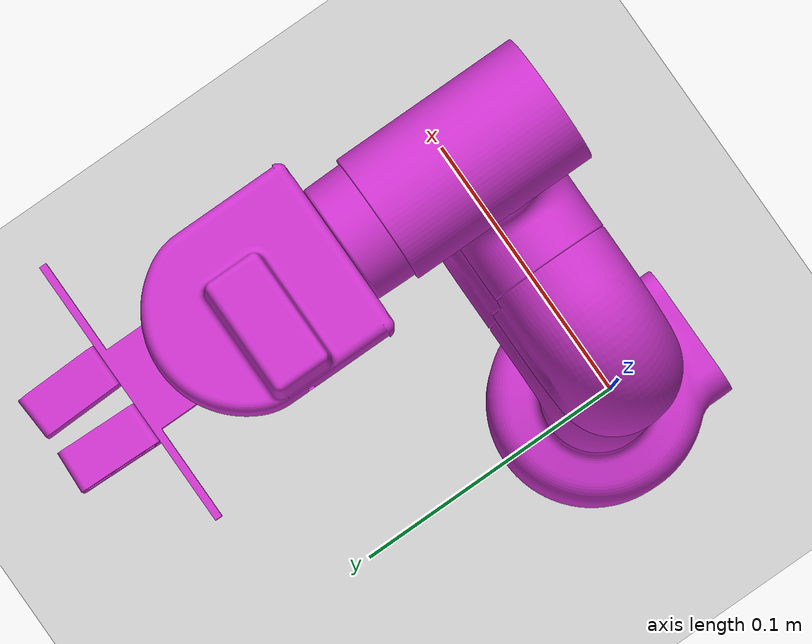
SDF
<sdf version="1.9">
 <world name="car_world">
  <physics name="1ms" type="ignored">
   <max_step_size>0.001</max_step_size>
   <real_time_factor>1</real_time_factor>
   <real_time_update_rate>1000</real_time_update_rate>
  </physics>
  <plugin name="ignition::gazebo::systems::Physics" filename="libignition-gazebo-physics-system.so"/>
  <plugin name="ignition::gazebo::systems::UserCommands" filename="libignition-gazebo-user-commands-system.so"/>
  <plugin name="ignition::gazebo::systems::SceneBroadcaster" filename="libignition-gazebo-scene-broadcaster-system.so"/>
  <gravity>0 0 -9.8</gravity>
  <magnetic_field>6e-06 2.3e-05 -4.2e-05</magnetic_field>
  <atmosphere type="adiabatic"/>
  <scene><ambient>0.4 0.4 0.4 1</ambient><background>0.7 0.7 0.7 1</background><shadows>true</shadows></scene>
  <model name="ground_plane">
   <static>true</static>
   <link name="link">
    <collision name="collision">
     <geometry><plane><normal>0 0 1</normal><size>1 1</size></plane></geometry>
    </collision>
    <visual name="visual">
     <geometry><plane><normal>0 0 1</normal><size>100 100</size></plane></geometry>
     <material>
      <ambient>0.8 0.8 0.8 1</ambient>
      <diffuse>0.8 0.8 0.8 1</diffuse>
      <specular>0.8 0.8 0.8 1</specular>
     </material>
    </visual>
    <inertial>
     <mass>1</mass>
     <inertia><ixx>1</ixx><ixy>0</ixy><ixz>0</ixz><iyy>1</iyy><iyz>0</iyz><izz>1</izz></inertia>
    </inertial>
   </link>
  </model>
  <model name="joints">
   <plugin filename="libignition-gazebo-joint-state-publisher-system.so" name="ignition::gazebo::systems::JointStatePublisher"/>
   <plugin filename="gz-sim-joint-position-controller-system" name="ignition::gazebo::systems::JointPositionController">
    <joint_name>base_link_j1</joint_name>
   </plugin>
   <plugin filename="gz-sim-joint-position-controller-system" name="ignition::gazebo::systems::JointPositionController">
    <joint_name>shoulder_j2</joint_name>
   </plugin>
   <plugin filename="gz-sim-joint-position-controller-system" name="ignition::gazebo::systems::JointPositionController">
    <joint_name>elbow1_j3</joint_name>
   </plugin>
   <plugin filename="gz-sim-joint-position-controller-system" name="ignition::gazebo::systems::JointPositionController">
    <joint_name>elbow2_j4</joint_name>
   </plugin>
   <plugin filename="gz-sim-joint-position-controller-system" name="ignition::gazebo::systems::JointPositionController">
    <joint_name>wrist_j5</joint_name>
   </plugin>
   <plugin filename="gz-sim-joint-position-controller-system" name="ignition::gazebo::systems::JointPositionController">
    <joint_name>endeff_j6</joint_name>
   </plugin>
   <link name="shoulder">
    <pose>0 0.032123 0.051938 1.5708 -0 0</pose>
    <inertial>
     <mass>0.89223600000000003</mass>
     <pose>0.006107 0.06982 0.02453 0 -0 0</pose>
     <inertia>
      <ixx>0.00063692900000000005</ixx>
      <iyy>0.00024207800000000001</iyy>
      <izz>0.000714013</izz>
      <ixy>-0.00014307799999999999</ixy>
      <iyz>-1.82782e-13</iyz>
      <ixz>2.1864799999999999e-13</ixz>
     </inertia>
    </inertial>
    <visual name="shoulder_visual">
     <geometry><mesh><uri>file://meshes/shoulder.stl</uri><scale>0.001 0.001 0.001</scale></mesh></geometry>
     <material>
      <ambient>0.8 0.2 0.8 1</ambient>
      <diffuse>0.8 0.2 0.8 1</diffuse>
      <specular>0.5 0.5 0.2 1</specular>
     </material>
    </visual>
    <collision name="shoulder_collision">
     <geometry><mesh><uri>file://meshes/shoulder.stl</uri><scale>0.001 0.001 0.001</scale></mesh></geometry>
    </collision>
   </link>
   <link name="elbow1">
    <pose>0.1 0.032161 0.331933 1.57101 -0 -3.14159</pose>
    <inertial>
     <mass>1.3454699999999999</mass>
     <pose>0.035943 -0.13605 -0.02453 0 -0 0</pose>
     <inertia>
      <ixx>0.0020138700000000001</ixx>
      <iyy>0.00038056400000000001</iyy>
      <izz>0.0021456600000000002</izz>
      <ixy>-1.9530399999999999e-12</ixy>
      <iyz>-3.38013e-16</iyz>
      <ixz>5.2711999999999998e-13</ixz>
     </inertia>
    </inertial>
    <visual name="elbow1_visual">
     <geometry><mesh><uri>file://meshes/elbow1.stl</uri><scale>0.001 0.001 0.001</scale></mesh></geometry>
     <material>
      <ambient>0.8 0.2 0.8 1</ambient>
      <diffuse>0.8 0.2 0.8 1</diffuse>
      <specular>0.5 0.5 0.2 1</specular>
     </material>
    </visual>
    <collision name="elbow1_collision">
     <geometry><mesh><uri>file://meshes/elbow1.stl</uri><scale>0.001 0.001 0.001</scale></mesh></geometry>
    </collision>
   </link>
   <link name="elbow2">
    <pose>0.05 0.031977 0.531952 1.57138 -0 0</pose>
    <inertial>
     <mass>1.3454699999999999</mass>
     <pose>-0.041927 -0.239877 0.02453 0 -0 0</pose>
     <inertia>
      <ixx>0.0020138700000000001</ixx>
      <iyy>0.00038056400000000001</iyy>
      <izz>0.0021456600000000002</izz>
      <ixy>-1.9530399999999999e-12</ixy>
      <iyz>-3.3831300000000002e-16</iyz>
      <ixz>5.2711999999999998e-13</ixz>
     </inertia>
    </inertial>
    <visual name="elbow2_visual">
     <geometry><mesh><uri>file://meshes/elbow2.stl</uri><scale>0.001 0.001 0.001</scale></mesh></geometry>
     <material>
      <ambient>0.8 0.2 0.8 1</ambient>
      <diffuse>0.8 0.2 0.8 1</diffuse>
      <specular>0.5 0.5 0.2 1</specular>
     </material>
    </visual>
    <collision name="elbow2_collision">
     <geometry><mesh><uri>file://meshes/elbow2.stl</uri><scale>0.001 0.001 0.001</scale></mesh></geometry>
    </collision>
   </link>
   <link name="wrist">
    <pose>0.09 0.032542 0.706907 -1.56956 -0 3.14159</pose>
    <inertial>
     <mass>0.56212899999999999</mass>
     <pose>0.027531 0.357129 0.02453 0 -0 0</pose>
     <inertia>
      <ixx>0.00016124100000000001</ixx>
      <iyy>0.00016124100000000001</iyy>
      <izz>0.00021861800000000001</izz>
      <ixy>-5.36332e-05</ixy>
      <iyz>-1.5165100000000001e-13</iyz>
      <ixz>1.5166800000000001e-13</ixz>
     </inertia>
    </inertial>
    <visual name="wrist_visual">
     <geometry><mesh><uri>file://meshes/wrist.stl</uri><scale>0.001 0.001 0.001</scale></mesh></geometry>
     <material>
      <ambient>0.8 0.2 0.8 1</ambient>
      <diffuse>0.8 0.2 0.8 1</diffuse>
      <specular>0.5 0.5 0.2 1</specular>
     </material>
    </visual>
    <collision name="wrist_collision">
     <geometry><mesh><uri>file://meshes/wrist.stl</uri><scale>0.001 0.001 0.001</scale></mesh></geometry>
    </collision>
   </link>
   <link name="endeff">
    <pose>0.149954 0.132664 0.781783 3.14035 0 0.000369</pose>
    <inertial>
     <mass>0.86778999999999995</mass>
     <pose>-0.07787 0.115884 0.374762 0 -0 0</pose>
     <inertia>
      <ixx>0.00048065</ixx>
      <iyy>0.00026170499999999999</iyy>
      <izz>0.00039769399999999998</izz>
      <ixy>2.3478199999999999e-09</ixy>
      <iyz>-3.8289299999999999e-05</iyz>
      <ixz>7.6579099999999993e-09</ixz>
     </inertia>
    </inertial>
    <visual name="endeff_visual">
     <geometry><mesh><uri>file://meshes/endeff.stl</uri><scale>0.001 0.001 0.001</scale></mesh></geometry>
     <material>
      <ambient>0.8 0.2 0.8 1</ambient>
      <diffuse>0.8 0.2 0.8 1</diffuse>
      <specular>0.5 0.5 0.2 1</specular>
     </material>
    </visual>
    <collision name="endeff_collision">
     <geometry><mesh><uri>file://meshes/endeff.stl</uri><scale>0.001 0.001 0.001</scale></mesh></geometry>
    </collision>
   </link>
   <link name="base_link">
    <pose>3e-06 0 0 -0 -0 0.000365</pose>
    <inertial>
     <mass>2.3872100000000001</mass>
     <pose>3.7e-05 0.005654 0.03473 0 -0 0</pose>
     <inertia>
      <ixx>0.0018634599999999999</ixx>
      <iyy>0.0017434</iyy>
      <izz>0.0016067500000000001</izz>
      <ixy>1.4751099999999999e-06</ixy>
      <iyz>-9.4673399999999994e-06</iyz>
      <ixz>1.2099400000000001e-06</ixz>
     </inertia>
    </inertial>
    <visual name="base_link_visual">
     <geometry><mesh><uri>file://meshes/base.stl</uri><scale>0.001 0.001 0.001</scale></mesh></geometry>
     <material>
      <ambient>0.8 0.2 0.8 1</ambient>
      <diffuse>0.8 0.2 0.8 1</diffuse>
      <specular>0.5 0.5 0.2 1</specular>
     </material>
    </visual>
    <collision name="base_link_collision">
     <geometry><mesh><uri>file://meshes/base.stl</uri><scale>0.001 0.001 0.001</scale></mesh></geometry>
    </collision>
   </link>
   <link name="Component46-v1">
    <pose>-0.006306 -0.062218 0.156553 0.001243 0.000121 -3.11882</pose>
    <inertial>
     <mass>0.052696</mass>
     <pose>-0.092798 -0.202844 0.252122 0 -0 0</pose>
     <inertia>
      <ixx>4.6930900000000002e-06</ixx>
      <iyy>2.55113e-06</iyy>
      <izz>3.6803999999999999e-06</izz>
      <ixy>4.35233e-09</ixy>
      <iyz>7.2444499999999997e-11</iyz>
      <ixz>9.0974000000000005e-09</ixz>
     </inertia>
    </inertial>
    <visual name="Component46-v1_visual">
     <geometry><mesh><uri>file://meshes/Component46-v1.stl</uri><scale>0.001 0.001 0.001</scale></mesh></geometry>
     <material>
      <ambient>0.8 0.2 0.8 1</ambient>
      <diffuse>0.8 0.2 0.8 1</diffuse>
      <specular>0.5 0.5 0.2 1</specular>
     </material>
    </visual>
    <collision name="Component46-v1_collision">
     <geometry><mesh><uri>file://meshes/Component46-v1.stl</uri><scale>0.001 0.001 0.001</scale></mesh></geometry>
    </collision>
   </link>
   <link name="Component47-v1">
    <pose>0.0178 -0.058858 0.156552 0.001237 0.000177 3.11956</pose>
    <inertial>
     <mass>0.053148500000000001</mass>
     <pose>-0.040151 -0.202472 0.252169 0 -0 0</pose>
     <inertia>
      <ixx>4.7224099999999997e-06</ixx>
      <iyy>2.5687000000000001e-06</iyy>
      <izz>3.6994000000000001e-06</izz>
      <ixy>-4.3999600000000002e-09</ixy>
      <iyz>4.3483399999999999e-11</iyz>
      <ixz>-5.1396500000000001e-09</ixz>
     </inertia>
    </inertial>
    <visual name="Component47-v1_visual">
     <geometry><mesh><uri>file://meshes/Component47-v1.stl</uri><scale>0.001 0.001 0.001</scale></mesh></geometry>
     <material>
      <ambient>0.8 0.2 0.8 1</ambient>
      <diffuse>0.8 0.2 0.8 1</diffuse>
      <specular>0.5 0.5 0.2 1</specular>
     </material>
    </visual>
    <collision name="Component47-v1_collision">
     <geometry><mesh><uri>file://meshes/Component47-v1.stl</uri><scale>0.001 0.001 0.001</scale></mesh></geometry>
    </collision>
   </link>
   <link name="Component49-v1">
    <pose>0.00512 -0.060658 0.148052 0.00124 0.000149 -3.14123</pose>
    <inertial>
     <mass>0.77099899999999999</mass>
     <pose>-0.065944 -0.146983 0.267342 0 -0 0</pose>
     <inertia>
      <ixx>0.00033165400000000002</ixx>
      <iyy>0.00028393199999999998</iyy>
      <izz>0.00037760799999999998</izz>
      <ixy>-3.0274599999999998e-07</ixy>
      <iyz>-5.0883000000000001e-06</iyz>
      <ixz>-1.90211e-05</ixz>
     </inertia>
    </inertial>
    <visual name="Component49-v1_visual">
     <geometry><mesh><uri>file://meshes/Component49-v1.stl</uri><scale>0.001 0.001 0.001</scale></mesh></geometry>
     <material>
      <ambient>0.8 0.2 0.8 1</ambient>
      <diffuse>0.8 0.2 0.8 1</diffuse>
      <specular>0.5 0.5 0.2 1</specular>
     </material>
    </visual>
    <collision name="Component49-v1_collision">
     <geometry><mesh><uri>file://meshes/Component49-v1.stl</uri><scale>0.001 0.001 0.001</scale></mesh></geometry>
    </collision>
   </link>
   <link name="adapter-v1">
    <pose>0.200484 0.011318 0.68585 3.14035 -0.000149 0.000369</pose>
    <inertial>
     <mass>0.020902</mass>
     <pose>-0.128399 -0.041841 0.273549 0 -0 0</pose>
     <inertia>
      <ixx>3.01336e-06</ixx>
      <iyy>5.36657e-06</iyy>
      <izz>3.0162200000000002e-06</izz>
      <ixy>-2.4006999999999998e-10</ixy>
      <iyz>1.4896499999999999e-09</iyz>
      <ixz>6.5154399999999995e-13</ixz>
     </inertia>
    </inertial>
    <visual name="adapter-v1_visual">
     <geometry><mesh><uri>file://meshes/adapter-v1.stl</uri><scale>0.001 0.001 0.001</scale></mesh></geometry>
     <material>
      <ambient>0.8 0.2 0.8 1</ambient>
      <diffuse>0.8 0.2 0.8 1</diffuse>
      <specular>0.5 0.5 0.2 1</specular>
     </material>
    </visual>
    <collision name="adapter-v1_collision">
     <geometry><mesh><uri>file://meshes/adapter-v1.stl</uri><scale>0.001 0.001 0.001</scale></mesh></geometry>
    </collision>
   </link>
   <joint name="base_link_j1" type="revolute">
    <pose>0 0.023733 0.024531 0 -0 0</pose>
    <parent>base_link</parent>
    <child>shoulder</child>
    <axis>
     <xyz>0 1 0</xyz>
     <limit>
      <lower>-3.14</lower>
      <upper>3.14</upper>
      <effort>20</effort>
      <velocity>2</velocity>
      <stiffness>100000000</stiffness>
      <dissipation>1</dissipation>
     </limit>
     <dynamics>
      <spring_reference>0</spring_reference>
      <spring_stiffness>0</spring_stiffness>
      <damping>0</damping>
      <friction>0</friction>
     </dynamics>
    </axis>
   </joint>
   <joint name="shoulder_j2" type="revolute">
    <pose>0.063935 -0.184137 -0.024531 0 -0 0</pose>
    <parent>shoulder</parent>
    <child>elbow1</child>
    <axis>
     <xyz>-1 0 0</xyz>
     <limit>
      <lower>-3.14</lower>
      <upper>3.14</upper>
      <effort>20</effort>
      <velocity>2</velocity>
      <stiffness>100000000</stiffness>
      <dissipation>1</dissipation>
     </limit>
     <dynamics>
      <spring_reference>0</spring_reference>
      <spring_stiffness>0</spring_stiffness>
      <damping>0</damping>
      <friction>0</friction>
     </dynamics>
    </axis>
   </joint>
   <joint name="elbow1_j3" type="revolute">
    <pose>-0.013935 -0.287963 0.024531 0 -0 0</pose>
    <parent>elbow1</parent>
    <child>elbow2</child>
    <axis>
     <xyz>-1 0 0</xyz>
     <limit>
      <lower>-3.14</lower>
      <upper>3.14</upper>
      <effort>20</effort>
      <velocity>2</velocity>
      <stiffness>100000000</stiffness>
      <dissipation>1</dissipation>
     </limit>
     <dynamics>
      <spring_reference>0</spring_reference>
      <spring_stiffness>0</spring_stiffness>
      <damping>0</damping>
      <friction>0</friction>
     </dynamics>
    </axis>
   </joint>
   <joint name="elbow2_j4" type="revolute">
    <pose>0.053935 0.36679 0.024531 0 -0 0</pose>
    <parent>elbow2</parent>
    <child>wrist</child>
    <axis>
     <xyz>-1 -0 0</xyz>
     <limit>
      <lower>-3.14</lower>
      <upper>3.14</upper>
      <effort>20</effort>
      <velocity>2</velocity>
      <stiffness>100000000</stiffness>
      <dissipation>1</dissipation>
     </limit>
     <dynamics>
      <spring_reference>0</spring_reference>
      <spring_stiffness>0</spring_stiffness>
      <damping>0</damping>
      <friction>0</friction>
     </dynamics>
    </axis>
   </joint>
   <joint name="wrist_j5" type="revolute">
    <pose>-0.07787 0.124531 0.405725 0 -0 0</pose>
    <parent>wrist</parent>
    <child>endeff</child>
    <axis>
     <xyz>0 0 -1</xyz>
     <limit>
      <lower>-3.14</lower>
      <upper>3.14</upper>
      <effort>20</effort>
      <velocity>2</velocity>
      <stiffness>100000000</stiffness>
      <dissipation>1</dissipation>
     </limit>
     <dynamics>
      <spring_reference>0</spring_reference>
      <spring_stiffness>0</spring_stiffness>
      <damping>0</damping>
      <friction>0</friction>
     </dynamics>
    </axis>
   </joint>
   <joint name="endeff_j6" type="revolute">
    <pose>-0.128396 -0.0436 0.273557 0 -0 0</pose>
    <parent>endeff</parent>
    <child>adapter-v1</child>
    <axis>
     <xyz>0 -1 0</xyz>
     <limit>
      <lower>-3.14</lower>
      <upper>3.14</upper>
      <effort>20</effort>
      <velocity>2</velocity>
      <stiffness>100000000</stiffness>
      <dissipation>1</dissipation>
     </limit>
     <dynamics>
      <spring_reference>0</spring_reference>
      <spring_stiffness>0</spring_stiffness>
      <damping>0</damping>
      <friction>0</friction>
     </dynamics>
    </axis>
   </joint>
   <joint name="adapter-v1_Rigid-16" type="fixed">
    <pose>-0.067075 -0.116836 0.2643 0 -0 0</pose>
    <parent>adapter-v1</parent>
    <child>Component49-v1</child>
   </joint>
   <joint name="Component49-v1_Slider-17" type="prismatic">
    <pose>-0.082779 -0.190048 0.25225 0 -0 0</pose>
    <parent>Component49-v1</parent>
    <child>Component46-v1</child>
    <axis>
     <xyz>0.999749 -0.022405 0</xyz>
     <limit>
      <lower>-0.029999999999999999</lower>
      <upper>0</upper>
      <effort>20</effort>
      <velocity>2</velocity>
      <stiffness>100000000</stiffness>
      <dissipation>1</dissipation>
     </limit>
     <dynamics>
      <spring_reference>0</spring_reference>
      <spring_stiffness>0</spring_stiffness>
      <damping>0</damping>
      <friction>0</friction>
     </dynamics>
    </axis>
   </joint>
   <joint name="Component49-v1_Slider-18" type="prismatic">
    <pose>-0.050156 -0.189676 0.25225 0 -0 0</pose>
    <parent>Component49-v1</parent>
    <child>Component47-v1</child>
    <axis>
     <xyz>0.999749 0.022401 0</xyz>
     <limit>
      <lower>0</lower>
      <upper>0.029999999999999999</upper>
      <effort>20</effort>
      <velocity>2</velocity>
      <stiffness>100000000</stiffness>
      <dissipation>1</dissipation>
     </limit>
     <dynamics>
      <spring_reference>0</spring_reference>
      <spring_stiffness>0</spring_stiffness>
      <damping>0</damping>
      <friction>0</friction>
     </dynamics>
    </axis>
   </joint>
   <pose>-3e-06 0 5e-06 -0 0 -0.000365</pose>
   <static>false</static>
  </model>
  <light name="main_light" type="directional">
   <pose>0 0 10 0 -0 0</pose>
   <intensity>1</intensity>
   <direction>-0.5 0.1 -0.9</direction>
   <diffuse>0.8 0.8 0.8 1</diffuse>
   <specular>0.2 0.2 0.2 1</specular>
   <attenuation>
    <range>1000</range>
    <linear>0.01</linear>
    <constant>0.90000000000000002</constant>
    <quadratic>0.001</quadratic>
   </attenuation>
   <spot><inner_angle>0</inner_angle><outer_angle>0</outer_angle><falloff>0</falloff></spot>
  </light>
 </world>
</sdf>
